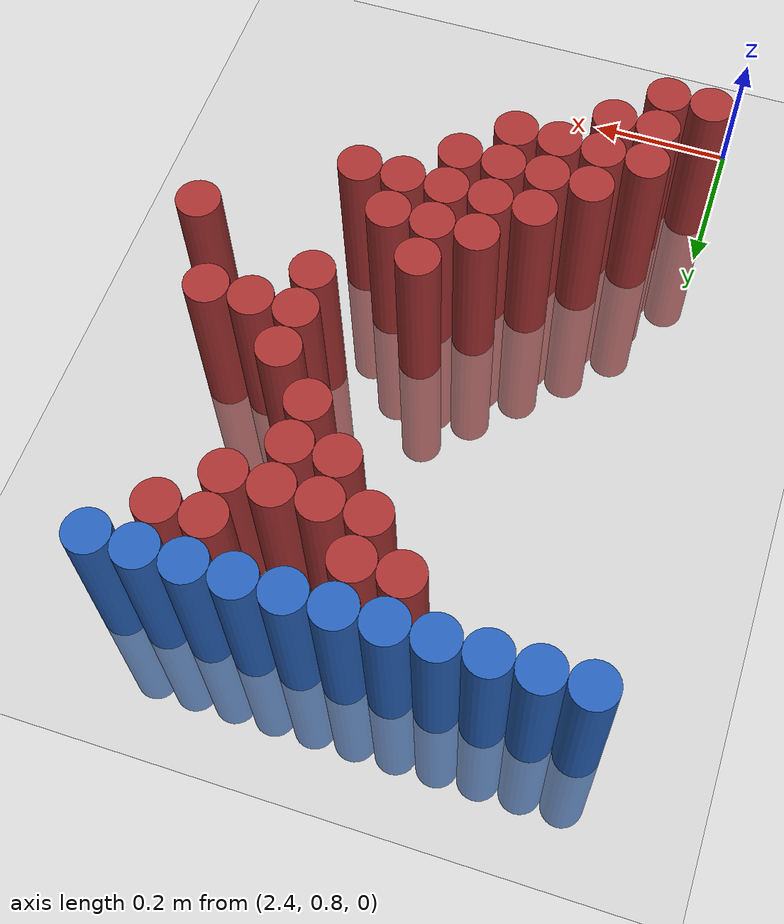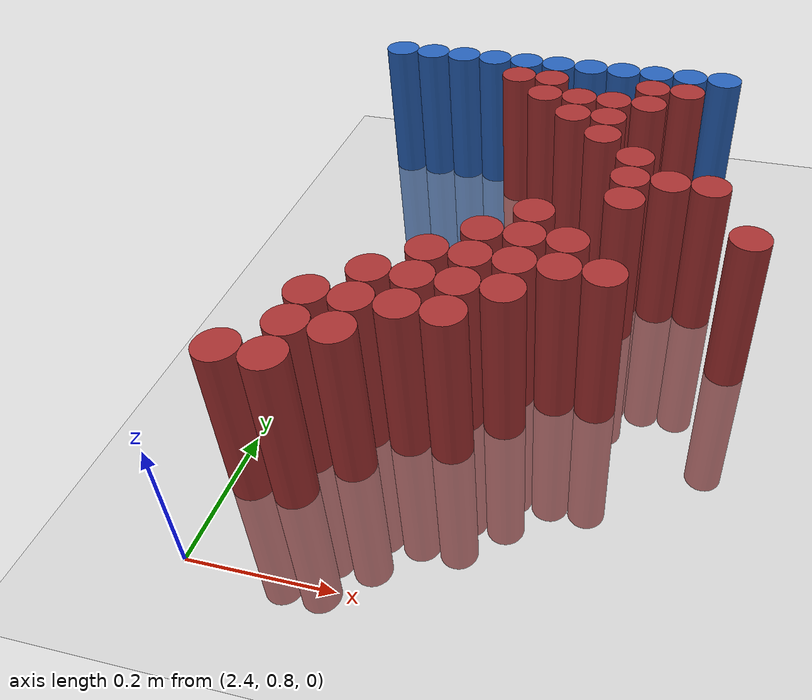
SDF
<sdf version="1.6">
 <world name="default">
  <model name="ground_plane">
   <static>1</static>
   <link name="link">
    <collision name="collision">
     <geometry><plane><normal>0 0 1</normal><size>100 100</size></plane></geometry>
     <surface><friction><ode><mu>100</mu><mu2>50</mu2></ode></friction></surface>
    </collision>
    <visual name="visual">
     <cast_shadows>0</cast_shadows>
     <geometry><plane><normal>0 0 1</normal><size>100 100</size></plane></geometry>
     <material>
      <script><uri>file://media/materials/scripts/gazebo.material</uri><name>Gazebo/Grey</name></script>
     </material>
    </visual>
   </link>
  </model>
  <model name="unit_cylinder_100">
   <static>1</static>
   <pose>2.370000 1.770000 0.000000 0.000000 0.000000 0.000000</pose>
   <link name="link">
    <inertial>
     <mass>1</mass>
     <inertia><ixx>0.145833</ixx><ixy>0</ixy><ixz>0</ixz><iyy>0.145833</iyy><iyz>0</iyz><izz>0.125</izz></inertia>
    </inertial>
    <collision name="collision">
     <geometry><cylinder><radius>0.030000</radius><length>0.5</length></cylinder></geometry>
    </collision>
    <visual name="visual">
     <geometry><cylinder><radius>0.030000</radius><length>0.5</length></cylinder></geometry>
     <material>
      <ambient>0.152000 0.379000 0.720000 1</ambient>
      <diffuse>0.152000 0.379000 0.720000 1</diffuse>
     </material>
     <material>
      <script><name>Gazebo/Grey</name><uri>file://media/materials/scripts/gazebo.material</uri></script>
     </material>
    </visual>
   </link>
  </model>
  <model name="unit_cylinder_101">
   <static>1</static>
   <pose>2.430000 1.770000 0.000000 0.000000 0.000000 0.000000</pose>
   <link name="link">
    <inertial>
     <mass>1</mass>
     <inertia><ixx>0.145833</ixx><ixy>0</ixy><ixz>0</ixz><iyy>0.145833</iyy><iyz>0</iyz><izz>0.125</izz></inertia>
    </inertial>
    <collision name="collision">
     <geometry><cylinder><radius>0.030000</radius><length>0.5</length></cylinder></geometry>
    </collision>
    <visual name="visual">
     <geometry><cylinder><radius>0.030000</radius><length>0.5</length></cylinder></geometry>
     <material>
      <ambient>0.152000 0.379000 0.720000 1</ambient>
      <diffuse>0.152000 0.379000 0.720000 1</diffuse>
     </material>
     <material>
      <script><name>Gazebo/Grey</name><uri>file://media/materials/scripts/gazebo.material</uri></script>
     </material>
    </visual>
   </link>
  </model>
  <model name="unit_cylinder_102">
   <static>1</static>
   <pose>2.490000 1.770000 0.000000 0.000000 0.000000 0.000000</pose>
   <link name="link">
    <inertial>
     <mass>1</mass>
     <inertia><ixx>0.145833</ixx><ixy>0</ixy><ixz>0</ixz><iyy>0.145833</iyy><iyz>0</iyz><izz>0.125</izz></inertia>
    </inertial>
    <collision name="collision">
     <geometry><cylinder><radius>0.030000</radius><length>0.5</length></cylinder></geometry>
    </collision>
    <visual name="visual">
     <geometry><cylinder><radius>0.030000</radius><length>0.5</length></cylinder></geometry>
     <material>
      <ambient>0.152000 0.379000 0.720000 1</ambient>
      <diffuse>0.152000 0.379000 0.720000 1</diffuse>
     </material>
     <material>
      <script><name>Gazebo/Grey</name><uri>file://media/materials/scripts/gazebo.material</uri></script>
     </material>
    </visual>
   </link>
  </model>
  <model name="unit_cylinder_103">
   <static>1</static>
   <pose>2.550000 1.770000 0.000000 0.000000 0.000000 0.000000</pose>
   <link name="link">
    <inertial>
     <mass>1</mass>
     <inertia><ixx>0.145833</ixx><ixy>0</ixy><ixz>0</ixz><iyy>0.145833</iyy><iyz>0</iyz><izz>0.125</izz></inertia>
    </inertial>
    <collision name="collision">
     <geometry><cylinder><radius>0.030000</radius><length>0.5</length></cylinder></geometry>
    </collision>
    <visual name="visual">
     <geometry><cylinder><radius>0.030000</radius><length>0.5</length></cylinder></geometry>
     <material>
      <ambient>0.152000 0.379000 0.720000 1</ambient>
      <diffuse>0.152000 0.379000 0.720000 1</diffuse>
     </material>
     <material>
      <script><name>Gazebo/Grey</name><uri>file://media/materials/scripts/gazebo.material</uri></script>
     </material>
    </visual>
   </link>
  </model>
  <model name="unit_cylinder_104">
   <static>1</static>
   <pose>2.610000 1.770000 0.000000 0.000000 0.000000 0.000000</pose>
   <link name="link">
    <inertial>
     <mass>1</mass>
     <inertia><ixx>0.145833</ixx><ixy>0</ixy><ixz>0</ixz><iyy>0.145833</iyy><iyz>0</iyz><izz>0.125</izz></inertia>
    </inertial>
    <collision name="collision">
     <geometry><cylinder><radius>0.030000</radius><length>0.5</length></cylinder></geometry>
    </collision>
    <visual name="visual">
     <geometry><cylinder><radius>0.030000</radius><length>0.5</length></cylinder></geometry>
     <material>
      <ambient>0.152000 0.379000 0.720000 1</ambient>
      <diffuse>0.152000 0.379000 0.720000 1</diffuse>
     </material>
     <material>
      <script><name>Gazebo/Grey</name><uri>file://media/materials/scripts/gazebo.material</uri></script>
     </material>
    </visual>
   </link>
  </model>
  <model name="unit_cylinder_105">
   <static>1</static>
   <pose>2.670000 1.770000 0.000000 0.000000 0.000000 0.000000</pose>
   <link name="link">
    <inertial>
     <mass>1</mass>
     <inertia><ixx>0.145833</ixx><ixy>0</ixy><ixz>0</ixz><iyy>0.145833</iyy><iyz>0</iyz><izz>0.125</izz></inertia>
    </inertial>
    <collision name="collision">
     <geometry><cylinder><radius>0.030000</radius><length>0.5</length></cylinder></geometry>
    </collision>
    <visual name="visual">
     <geometry><cylinder><radius>0.030000</radius><length>0.5</length></cylinder></geometry>
     <material>
      <ambient>0.152000 0.379000 0.720000 1</ambient>
      <diffuse>0.152000 0.379000 0.720000 1</diffuse>
     </material>
     <material>
      <script><name>Gazebo/Grey</name><uri>file://media/materials/scripts/gazebo.material</uri></script>
     </material>
    </visual>
   </link>
  </model>
  <model name="unit_cylinder_106">
   <static>1</static>
   <pose>2.730000 1.770000 0.000000 0.000000 0.000000 0.000000</pose>
   <link name="link">
    <inertial>
     <mass>1</mass>
     <inertia><ixx>0.145833</ixx><ixy>0</ixy><ixz>0</ixz><iyy>0.145833</iyy><iyz>0</iyz><izz>0.125</izz></inertia>
    </inertial>
    <collision name="collision">
     <geometry><cylinder><radius>0.030000</radius><length>0.5</length></cylinder></geometry>
    </collision>
    <visual name="visual">
     <geometry><cylinder><radius>0.030000</radius><length>0.5</length></cylinder></geometry>
     <material>
      <ambient>0.152000 0.379000 0.720000 1</ambient>
      <diffuse>0.152000 0.379000 0.720000 1</diffuse>
     </material>
     <material>
      <script><name>Gazebo/Grey</name><uri>file://media/materials/scripts/gazebo.material</uri></script>
     </material>
    </visual>
   </link>
  </model>
  <model name="unit_cylinder_107">
   <static>1</static>
   <pose>2.790000 1.770000 0.000000 0.000000 0.000000 0.000000</pose>
   <link name="link">
    <inertial>
     <mass>1</mass>
     <inertia><ixx>0.145833</ixx><ixy>0</ixy><ixz>0</ixz><iyy>0.145833</iyy><iyz>0</iyz><izz>0.125</izz></inertia>
    </inertial>
    <collision name="collision">
     <geometry><cylinder><radius>0.030000</radius><length>0.5</length></cylinder></geometry>
    </collision>
    <visual name="visual">
     <geometry><cylinder><radius>0.030000</radius><length>0.5</length></cylinder></geometry>
     <material>
      <ambient>0.152000 0.379000 0.720000 1</ambient>
      <diffuse>0.152000 0.379000 0.720000 1</diffuse>
     </material>
     <material>
      <script><name>Gazebo/Grey</name><uri>file://media/materials/scripts/gazebo.material</uri></script>
     </material>
    </visual>
   </link>
  </model>
  <model name="unit_cylinder_108">
   <static>1</static>
   <pose>2.850000 1.770000 0.000000 0.000000 0.000000 0.000000</pose>
   <link name="link">
    <inertial>
     <mass>1</mass>
     <inertia><ixx>0.145833</ixx><ixy>0</ixy><ixz>0</ixz><iyy>0.145833</iyy><iyz>0</iyz><izz>0.125</izz></inertia>
    </inertial>
    <collision name="collision">
     <geometry><cylinder><radius>0.030000</radius><length>0.5</length></cylinder></geometry>
    </collision>
    <visual name="visual">
     <geometry><cylinder><radius>0.030000</radius><length>0.5</length></cylinder></geometry>
     <material>
      <ambient>0.152000 0.379000 0.720000 1</ambient>
      <diffuse>0.152000 0.379000 0.720000 1</diffuse>
     </material>
     <material>
      <script><name>Gazebo/Grey</name><uri>file://media/materials/scripts/gazebo.material</uri></script>
     </material>
    </visual>
   </link>
  </model>
  <model name="unit_cylinder_109">
   <static>1</static>
   <pose>2.910000 1.770000 0.000000 0.000000 0.000000 0.000000</pose>
   <link name="link">
    <inertial>
     <mass>1</mass>
     <inertia><ixx>0.145833</ixx><ixy>0</ixy><ixz>0</ixz><iyy>0.145833</iyy><iyz>0</iyz><izz>0.125</izz></inertia>
    </inertial>
    <collision name="collision">
     <geometry><cylinder><radius>0.030000</radius><length>0.5</length></cylinder></geometry>
    </collision>
    <visual name="visual">
     <geometry><cylinder><radius>0.030000</radius><length>0.5</length></cylinder></geometry>
     <material>
      <ambient>0.152000 0.379000 0.720000 1</ambient>
      <diffuse>0.152000 0.379000 0.720000 1</diffuse>
     </material>
     <material>
      <script><name>Gazebo/Grey</name><uri>file://media/materials/scripts/gazebo.material</uri></script>
     </material>
    </visual>
   </link>
  </model>
  <model name="unit_cylinder_110">
   <static>1</static>
   <pose>2.970000 1.770000 0.000000 0.000000 0.000000 0.000000</pose>
   <link name="link">
    <inertial>
     <mass>1</mass>
     <inertia><ixx>0.145833</ixx><ixy>0</ixy><ixz>0</ixz><iyy>0.145833</iyy><iyz>0</iyz><izz>0.125</izz></inertia>
    </inertial>
    <collision name="collision">
     <geometry><cylinder><radius>0.030000</radius><length>0.5</length></cylinder></geometry>
    </collision>
    <visual name="visual">
     <geometry><cylinder><radius>0.030000</radius><length>0.5</length></cylinder></geometry>
     <material>
      <ambient>0.152000 0.379000 0.720000 1</ambient>
      <diffuse>0.152000 0.379000 0.720000 1</diffuse>
     </material>
     <material>
      <script><name>Gazebo/Grey</name><uri>file://media/materials/scripts/gazebo.material</uri></script>
     </material>
    </visual>
   </link>
  </model>
  <model name="unit_cylinder_128">
   <static>1</static>
   <pose>2.610000 1.710000 0.000000 0.000000 0.000000 0.000000</pose>
   <link name="link">
    <inertial>
     <mass>1</mass>
     <inertia><ixx>0.145833</ixx><ixy>0</ixy><ixz>0</ixz><iyy>0.145833</iyy><iyz>0</iyz><izz>0.125</izz></inertia>
    </inertial>
    <collision name="collision">
     <geometry><cylinder><radius>0.030000</radius><length>0.5</length></cylinder></geometry>
    </collision>
    <visual name="visual">
     <geometry><cylinder><radius>0.030000</radius><length>0.5</length></cylinder></geometry>
     <material>
      <ambient>0.648000 0.192000 0.192000 1</ambient>
      <diffuse>0.648000 0.192000 0.192000 1</diffuse>
     </material>
     <material>
      <script><name>Gazebo/Grey</name><uri>file://media/materials/scripts/gazebo.material</uri></script>
     </material>
    </visual>
   </link>
  </model>
  <model name="unit_cylinder_129">
   <static>1</static>
   <pose>2.670000 1.710000 0.000000 0.000000 0.000000 0.000000</pose>
   <link name="link">
    <inertial>
     <mass>1</mass>
     <inertia><ixx>0.145833</ixx><ixy>0</ixy><ixz>0</ixz><iyy>0.145833</iyy><iyz>0</iyz><izz>0.125</izz></inertia>
    </inertial>
    <collision name="collision">
     <geometry><cylinder><radius>0.030000</radius><length>0.5</length></cylinder></geometry>
    </collision>
    <visual name="visual">
     <geometry><cylinder><radius>0.030000</radius><length>0.5</length></cylinder></geometry>
     <material>
      <ambient>0.648000 0.192000 0.192000 1</ambient>
      <diffuse>0.648000 0.192000 0.192000 1</diffuse>
     </material>
     <material>
      <script><name>Gazebo/Grey</name><uri>file://media/materials/scripts/gazebo.material</uri></script>
     </material>
    </visual>
   </link>
  </model>
  <model name="unit_cylinder_130">
   <static>1</static>
   <pose>2.850000 1.710000 0.000000 0.000000 0.000000 0.000000</pose>
   <link name="link">
    <inertial>
     <mass>1</mass>
     <inertia><ixx>0.145833</ixx><ixy>0</ixy><ixz>0</ixz><iyy>0.145833</iyy><iyz>0</iyz><izz>0.125</izz></inertia>
    </inertial>
    <collision name="collision">
     <geometry><cylinder><radius>0.030000</radius><length>0.5</length></cylinder></geometry>
    </collision>
    <visual name="visual">
     <geometry><cylinder><radius>0.030000</radius><length>0.5</length></cylinder></geometry>
     <material>
      <ambient>0.648000 0.192000 0.192000 1</ambient>
      <diffuse>0.648000 0.192000 0.192000 1</diffuse>
     </material>
     <material>
      <script><name>Gazebo/Grey</name><uri>file://media/materials/scripts/gazebo.material</uri></script>
     </material>
    </visual>
   </link>
  </model>
  <model name="unit_cylinder_131">
   <static>1</static>
   <pose>2.910000 1.710000 0.000000 0.000000 0.000000 0.000000</pose>
   <link name="link">
    <inertial>
     <mass>1</mass>
     <inertia><ixx>0.145833</ixx><ixy>0</ixy><ixz>0</ixz><iyy>0.145833</iyy><iyz>0</iyz><izz>0.125</izz></inertia>
    </inertial>
    <collision name="collision">
     <geometry><cylinder><radius>0.030000</radius><length>0.5</length></cylinder></geometry>
    </collision>
    <visual name="visual">
     <geometry><cylinder><radius>0.030000</radius><length>0.5</length></cylinder></geometry>
     <material>
      <ambient>0.648000 0.192000 0.192000 1</ambient>
      <diffuse>0.648000 0.192000 0.192000 1</diffuse>
     </material>
     <material>
      <script><name>Gazebo/Grey</name><uri>file://media/materials/scripts/gazebo.material</uri></script>
     </material>
    </visual>
   </link>
  </model>
  <model name="unit_cylinder_142">
   <static>1</static>
   <pose>2.670000 1.650000 0.000000 0.000000 0.000000 0.000000</pose>
   <link name="link">
    <inertial>
     <mass>1</mass>
     <inertia><ixx>0.145833</ixx><ixy>0</ixy><ixz>0</ixz><iyy>0.145833</iyy><iyz>0</iyz><izz>0.125</izz></inertia>
    </inertial>
    <collision name="collision">
     <geometry><cylinder><radius>0.030000</radius><length>0.5</length></cylinder></geometry>
    </collision>
    <visual name="visual">
     <geometry><cylinder><radius>0.030000</radius><length>0.5</length></cylinder></geometry>
     <material>
      <ambient>0.648000 0.192000 0.192000 1</ambient>
      <diffuse>0.648000 0.192000 0.192000 1</diffuse>
     </material>
     <material>
      <script><name>Gazebo/Grey</name><uri>file://media/materials/scripts/gazebo.material</uri></script>
     </material>
    </visual>
   </link>
  </model>
  <model name="unit_cylinder_143">
   <static>1</static>
   <pose>2.730000 1.650000 0.000000 0.000000 0.000000 0.000000</pose>
   <link name="link">
    <inertial>
     <mass>1</mass>
     <inertia><ixx>0.145833</ixx><ixy>0</ixy><ixz>0</ixz><iyy>0.145833</iyy><iyz>0</iyz><izz>0.125</izz></inertia>
    </inertial>
    <collision name="collision">
     <geometry><cylinder><radius>0.030000</radius><length>0.5</length></cylinder></geometry>
    </collision>
    <visual name="visual">
     <geometry><cylinder><radius>0.030000</radius><length>0.5</length></cylinder></geometry>
     <material>
      <ambient>0.648000 0.192000 0.192000 1</ambient>
      <diffuse>0.648000 0.192000 0.192000 1</diffuse>
     </material>
     <material>
      <script><name>Gazebo/Grey</name><uri>file://media/materials/scripts/gazebo.material</uri></script>
     </material>
    </visual>
   </link>
  </model>
  <model name="unit_cylinder_144">
   <static>1</static>
   <pose>2.790000 1.650000 0.000000 0.000000 0.000000 0.000000</pose>
   <link name="link">
    <inertial>
     <mass>1</mass>
     <inertia><ixx>0.145833</ixx><ixy>0</ixy><ixz>0</ixz><iyy>0.145833</iyy><iyz>0</iyz><izz>0.125</izz></inertia>
    </inertial>
    <collision name="collision">
     <geometry><cylinder><radius>0.030000</radius><length>0.5</length></cylinder></geometry>
    </collision>
    <visual name="visual">
     <geometry><cylinder><radius>0.030000</radius><length>0.5</length></cylinder></geometry>
     <material>
      <ambient>0.648000 0.192000 0.192000 1</ambient>
      <diffuse>0.648000 0.192000 0.192000 1</diffuse>
     </material>
     <material>
      <script><name>Gazebo/Grey</name><uri>file://media/materials/scripts/gazebo.material</uri></script>
     </material>
    </visual>
   </link>
  </model>
  <model name="unit_cylinder_145">
   <static>1</static>
   <pose>2.850000 1.650000 0.000000 0.000000 0.000000 0.000000</pose>
   <link name="link">
    <inertial>
     <mass>1</mass>
     <inertia><ixx>0.145833</ixx><ixy>0</ixy><ixz>0</ixz><iyy>0.145833</iyy><iyz>0</iyz><izz>0.125</izz></inertia>
    </inertial>
    <collision name="collision">
     <geometry><cylinder><radius>0.030000</radius><length>0.5</length></cylinder></geometry>
    </collision>
    <visual name="visual">
     <geometry><cylinder><radius>0.030000</radius><length>0.5</length></cylinder></geometry>
     <material>
      <ambient>0.648000 0.192000 0.192000 1</ambient>
      <diffuse>0.648000 0.192000 0.192000 1</diffuse>
     </material>
     <material>
      <script><name>Gazebo/Grey</name><uri>file://media/materials/scripts/gazebo.material</uri></script>
     </material>
    </visual>
   </link>
  </model>
  <model name="unit_cylinder_153">
   <static>1</static>
   <pose>2.730000 1.590000 0.000000 0.000000 0.000000 0.000000</pose>
   <link name="link">
    <inertial>
     <mass>1</mass>
     <inertia><ixx>0.145833</ixx><ixy>0</ixy><ixz>0</ixz><iyy>0.145833</iyy><iyz>0</iyz><izz>0.125</izz></inertia>
    </inertial>
    <collision name="collision">
     <geometry><cylinder><radius>0.030000</radius><length>0.5</length></cylinder></geometry>
    </collision>
    <visual name="visual">
     <geometry><cylinder><radius>0.030000</radius><length>0.5</length></cylinder></geometry>
     <material>
      <ambient>0.648000 0.192000 0.192000 1</ambient>
      <diffuse>0.648000 0.192000 0.192000 1</diffuse>
     </material>
     <material>
      <script><name>Gazebo/Grey</name><uri>file://media/materials/scripts/gazebo.material</uri></script>
     </material>
    </visual>
   </link>
  </model>
  <model name="unit_cylinder_154">
   <static>1</static>
   <pose>2.790000 1.590000 0.000000 0.000000 0.000000 0.000000</pose>
   <link name="link">
    <inertial>
     <mass>1</mass>
     <inertia><ixx>0.145833</ixx><ixy>0</ixy><ixz>0</ixz><iyy>0.145833</iyy><iyz>0</iyz><izz>0.125</izz></inertia>
    </inertial>
    <collision name="collision">
     <geometry><cylinder><radius>0.030000</radius><length>0.5</length></cylinder></geometry>
    </collision>
    <visual name="visual">
     <geometry><cylinder><radius>0.030000</radius><length>0.5</length></cylinder></geometry>
     <material>
      <ambient>0.648000 0.192000 0.192000 1</ambient>
      <diffuse>0.648000 0.192000 0.192000 1</diffuse>
     </material>
     <material>
      <script><name>Gazebo/Grey</name><uri>file://media/materials/scripts/gazebo.material</uri></script>
     </material>
    </visual>
   </link>
  </model>
  <model name="unit_cylinder_160">
   <static>1</static>
   <pose>2.790000 1.530000 0.000000 0.000000 0.000000 0.000000</pose>
   <link name="link">
    <inertial>
     <mass>1</mass>
     <inertia><ixx>0.145833</ixx><ixy>0</ixy><ixz>0</ixz><iyy>0.145833</iyy><iyz>0</iyz><izz>0.125</izz></inertia>
    </inertial>
    <collision name="collision">
     <geometry><cylinder><radius>0.030000</radius><length>0.5</length></cylinder></geometry>
    </collision>
    <visual name="visual">
     <geometry><cylinder><radius>0.030000</radius><length>0.5</length></cylinder></geometry>
     <material>
      <ambient>0.648000 0.192000 0.192000 1</ambient>
      <diffuse>0.648000 0.192000 0.192000 1</diffuse>
     </material>
     <material>
      <script><name>Gazebo/Grey</name><uri>file://media/materials/scripts/gazebo.material</uri></script>
     </material>
    </visual>
   </link>
  </model>
  <model name="unit_cylinder_162">
   <static>1</static>
   <pose>2.850000 1.470000 0.000000 0.000000 0.000000 0.000000</pose>
   <link name="link">
    <inertial>
     <mass>1</mass>
     <inertia><ixx>0.145833</ixx><ixy>0</ixy><ixz>0</ixz><iyy>0.145833</iyy><iyz>0</iyz><izz>0.125</izz></inertia>
    </inertial>
    <collision name="collision">
     <geometry><cylinder><radius>0.030000</radius><length>0.5</length></cylinder></geometry>
    </collision>
    <visual name="visual">
     <geometry><cylinder><radius>0.030000</radius><length>0.5</length></cylinder></geometry>
     <material>
      <ambient>0.648000 0.192000 0.192000 1</ambient>
      <diffuse>0.648000 0.192000 0.192000 1</diffuse>
     </material>
     <material>
      <script><name>Gazebo/Grey</name><uri>file://media/materials/scripts/gazebo.material</uri></script>
     </material>
    </visual>
   </link>
  </model>
  <model name="unit_cylinder_165">
   <static>1</static>
   <pose>2.850000 1.410000 0.000000 0.000000 0.000000 0.000000</pose>
   <link name="link">
    <inertial>
     <mass>1</mass>
     <inertia><ixx>0.145833</ixx><ixy>0</ixy><ixz>0</ixz><iyy>0.145833</iyy><iyz>0</iyz><izz>0.125</izz></inertia>
    </inertial>
    <collision name="collision">
     <geometry><cylinder><radius>0.030000</radius><length>0.5</length></cylinder></geometry>
    </collision>
    <visual name="visual">
     <geometry><cylinder><radius>0.030000</radius><length>0.5</length></cylinder></geometry>
     <material>
      <ambient>0.648000 0.192000 0.192000 1</ambient>
      <diffuse>0.648000 0.192000 0.192000 1</diffuse>
     </material>
     <material>
      <script><name>Gazebo/Grey</name><uri>file://media/materials/scripts/gazebo.material</uri></script>
     </material>
    </visual>
   </link>
  </model>
  <model name="unit_cylinder_166">
   <static>1</static>
   <pose>2.910000 1.410000 0.000000 0.000000 0.000000 0.000000</pose>
   <link name="link">
    <inertial>
     <mass>1</mass>
     <inertia><ixx>0.145833</ixx><ixy>0</ixy><ixz>0</ixz><iyy>0.145833</iyy><iyz>0</iyz><izz>0.125</izz></inertia>
    </inertial>
    <collision name="collision">
     <geometry><cylinder><radius>0.030000</radius><length>0.5</length></cylinder></geometry>
    </collision>
    <visual name="visual">
     <geometry><cylinder><radius>0.030000</radius><length>0.5</length></cylinder></geometry>
     <material>
      <ambient>0.648000 0.192000 0.192000 1</ambient>
      <diffuse>0.648000 0.192000 0.192000 1</diffuse>
     </material>
     <material>
      <script><name>Gazebo/Grey</name><uri>file://media/materials/scripts/gazebo.material</uri></script>
     </material>
    </visual>
   </link>
  </model>
  <model name="unit_cylinder_167">
   <static>1</static>
   <pose>2.970000 1.410000 0.000000 0.000000 0.000000 0.000000</pose>
   <link name="link">
    <inertial>
     <mass>1</mass>
     <inertia><ixx>0.145833</ixx><ixy>0</ixy><ixz>0</ixz><iyy>0.145833</iyy><iyz>0</iyz><izz>0.125</izz></inertia>
    </inertial>
    <collision name="collision">
     <geometry><cylinder><radius>0.030000</radius><length>0.5</length></cylinder></geometry>
    </collision>
    <visual name="visual">
     <geometry><cylinder><radius>0.030000</radius><length>0.5</length></cylinder></geometry>
     <material>
      <ambient>0.648000 0.192000 0.192000 1</ambient>
      <diffuse>0.648000 0.192000 0.192000 1</diffuse>
     </material>
     <material>
      <script><name>Gazebo/Grey</name><uri>file://media/materials/scripts/gazebo.material</uri></script>
     </material>
    </visual>
   </link>
  </model>
  <model name="unit_cylinder_171">
   <static>1</static>
   <pose>2.850000 1.350000 0.000000 0.000000 0.000000 0.000000</pose>
   <link name="link">
    <inertial>
     <mass>1</mass>
     <inertia><ixx>0.145833</ixx><ixy>0</ixy><ixz>0</ixz><iyy>0.145833</iyy><iyz>0</iyz><izz>0.125</izz></inertia>
    </inertial>
    <collision name="collision">
     <geometry><cylinder><radius>0.030000</radius><length>0.5</length></cylinder></geometry>
    </collision>
    <visual name="visual">
     <geometry><cylinder><radius>0.030000</radius><length>0.5</length></cylinder></geometry>
     <material>
      <ambient>0.648000 0.192000 0.192000 1</ambient>
      <diffuse>0.648000 0.192000 0.192000 1</diffuse>
     </material>
     <material>
      <script><name>Gazebo/Grey</name><uri>file://media/materials/scripts/gazebo.material</uri></script>
     </material>
    </visual>
   </link>
  </model>
  <model name="unit_cylinder_178">
   <static>1</static>
   <pose>2.730000 1.290000 0.000000 0.000000 0.000000 0.000000</pose>
   <link name="link">
    <inertial>
     <mass>1</mass>
     <inertia><ixx>0.145833</ixx><ixy>0</ixy><ixz>0</ixz><iyy>0.145833</iyy><iyz>0</iyz><izz>0.125</izz></inertia>
    </inertial>
    <collision name="collision">
     <geometry><cylinder><radius>0.030000</radius><length>0.5</length></cylinder></geometry>
    </collision>
    <visual name="visual">
     <geometry><cylinder><radius>0.030000</radius><length>0.5</length></cylinder></geometry>
     <material>
      <ambient>0.648000 0.192000 0.192000 1</ambient>
      <diffuse>0.648000 0.192000 0.192000 1</diffuse>
     </material>
     <material>
      <script><name>Gazebo/Grey</name><uri>file://media/materials/scripts/gazebo.material</uri></script>
     </material>
    </visual>
   </link>
  </model>
  <model name="unit_cylinder_179">
   <static>1</static>
   <pose>3.030000 1.290000 0.000000 0.000000 0.000000 0.000000</pose>
   <link name="link">
    <inertial>
     <mass>1</mass>
     <inertia><ixx>0.145833</ixx><ixy>0</ixy><ixz>0</ixz><iyy>0.145833</iyy><iyz>0</iyz><izz>0.125</izz></inertia>
    </inertial>
    <collision name="collision">
     <geometry><cylinder><radius>0.030000</radius><length>0.5</length></cylinder></geometry>
    </collision>
    <visual name="visual">
     <geometry><cylinder><radius>0.030000</radius><length>0.5</length></cylinder></geometry>
     <material>
      <ambient>0.648000 0.192000 0.192000 1</ambient>
      <diffuse>0.648000 0.192000 0.192000 1</diffuse>
     </material>
     <material>
      <script><name>Gazebo/Grey</name><uri>file://media/materials/scripts/gazebo.material</uri></script>
     </material>
    </visual>
   </link>
  </model>
  <model name="unit_cylinder_185">
   <static>1</static>
   <pose>2.670000 1.230000 0.000000 0.000000 0.000000 0.000000</pose>
   <link name="link">
    <inertial>
     <mass>1</mass>
     <inertia><ixx>0.145833</ixx><ixy>0</ixy><ixz>0</ixz><iyy>0.145833</iyy><iyz>0</iyz><izz>0.125</izz></inertia>
    </inertial>
    <collision name="collision">
     <geometry><cylinder><radius>0.030000</radius><length>0.5</length></cylinder></geometry>
    </collision>
    <visual name="visual">
     <geometry><cylinder><radius>0.030000</radius><length>0.5</length></cylinder></geometry>
     <material>
      <ambient>0.648000 0.192000 0.192000 1</ambient>
      <diffuse>0.648000 0.192000 0.192000 1</diffuse>
     </material>
     <material>
      <script><name>Gazebo/Grey</name><uri>file://media/materials/scripts/gazebo.material</uri></script>
     </material>
    </visual>
   </link>
  </model>
  <model name="unit_cylinder_186">
   <static>1</static>
   <pose>2.730000 1.230000 0.000000 0.000000 0.000000 0.000000</pose>
   <link name="link">
    <inertial>
     <mass>1</mass>
     <inertia><ixx>0.145833</ixx><ixy>0</ixy><ixz>0</ixz><iyy>0.145833</iyy><iyz>0</iyz><izz>0.125</izz></inertia>
    </inertial>
    <collision name="collision">
     <geometry><cylinder><radius>0.030000</radius><length>0.5</length></cylinder></geometry>
    </collision>
    <visual name="visual">
     <geometry><cylinder><radius>0.030000</radius><length>0.5</length></cylinder></geometry>
     <material>
      <ambient>0.648000 0.192000 0.192000 1</ambient>
      <diffuse>0.648000 0.192000 0.192000 1</diffuse>
     </material>
     <material>
      <script><name>Gazebo/Grey</name><uri>file://media/materials/scripts/gazebo.material</uri></script>
     </material>
    </visual>
   </link>
  </model>
  <model name="unit_cylinder_187">
   <static>1</static>
   <pose>2.790000 1.230000 0.000000 0.000000 0.000000 0.000000</pose>
   <link name="link">
    <inertial>
     <mass>1</mass>
     <inertia><ixx>0.145833</ixx><ixy>0</ixy><ixz>0</ixz><iyy>0.145833</iyy><iyz>0</iyz><izz>0.125</izz></inertia>
    </inertial>
    <collision name="collision">
     <geometry><cylinder><radius>0.030000</radius><length>0.5</length></cylinder></geometry>
    </collision>
    <visual name="visual">
     <geometry><cylinder><radius>0.030000</radius><length>0.5</length></cylinder></geometry>
     <material>
      <ambient>0.648000 0.192000 0.192000 1</ambient>
      <diffuse>0.648000 0.192000 0.192000 1</diffuse>
     </material>
     <material>
      <script><name>Gazebo/Grey</name><uri>file://media/materials/scripts/gazebo.material</uri></script>
     </material>
    </visual>
   </link>
  </model>
  <model name="unit_cylinder_194">
   <static>1</static>
   <pose>2.610000 1.170000 0.000000 0.000000 0.000000 0.000000</pose>
   <link name="link">
    <inertial>
     <mass>1</mass>
     <inertia><ixx>0.145833</ixx><ixy>0</ixy><ixz>0</ixz><iyy>0.145833</iyy><iyz>0</iyz><izz>0.125</izz></inertia>
    </inertial>
    <collision name="collision">
     <geometry><cylinder><radius>0.030000</radius><length>0.5</length></cylinder></geometry>
    </collision>
    <visual name="visual">
     <geometry><cylinder><radius>0.030000</radius><length>0.5</length></cylinder></geometry>
     <material>
      <ambient>0.648000 0.192000 0.192000 1</ambient>
      <diffuse>0.648000 0.192000 0.192000 1</diffuse>
     </material>
     <material>
      <script><name>Gazebo/Grey</name><uri>file://media/materials/scripts/gazebo.material</uri></script>
     </material>
    </visual>
   </link>
  </model>
  <model name="unit_cylinder_195">
   <static>1</static>
   <pose>2.670000 1.170000 0.000000 0.000000 0.000000 0.000000</pose>
   <link name="link">
    <inertial>
     <mass>1</mass>
     <inertia><ixx>0.145833</ixx><ixy>0</ixy><ixz>0</ixz><iyy>0.145833</iyy><iyz>0</iyz><izz>0.125</izz></inertia>
    </inertial>
    <collision name="collision">
     <geometry><cylinder><radius>0.030000</radius><length>0.5</length></cylinder></geometry>
    </collision>
    <visual name="visual">
     <geometry><cylinder><radius>0.030000</radius><length>0.5</length></cylinder></geometry>
     <material>
      <ambient>0.648000 0.192000 0.192000 1</ambient>
      <diffuse>0.648000 0.192000 0.192000 1</diffuse>
     </material>
     <material>
      <script><name>Gazebo/Grey</name><uri>file://media/materials/scripts/gazebo.material</uri></script>
     </material>
    </visual>
   </link>
  </model>
  <model name="unit_cylinder_196">
   <static>1</static>
   <pose>2.730000 1.170000 0.000000 0.000000 0.000000 0.000000</pose>
   <link name="link">
    <inertial>
     <mass>1</mass>
     <inertia><ixx>0.145833</ixx><ixy>0</ixy><ixz>0</ixz><iyy>0.145833</iyy><iyz>0</iyz><izz>0.125</izz></inertia>
    </inertial>
    <collision name="collision">
     <geometry><cylinder><radius>0.030000</radius><length>0.5</length></cylinder></geometry>
    </collision>
    <visual name="visual">
     <geometry><cylinder><radius>0.030000</radius><length>0.5</length></cylinder></geometry>
     <material>
      <ambient>0.648000 0.192000 0.192000 1</ambient>
      <diffuse>0.648000 0.192000 0.192000 1</diffuse>
     </material>
     <material>
      <script><name>Gazebo/Grey</name><uri>file://media/materials/scripts/gazebo.material</uri></script>
     </material>
    </visual>
   </link>
  </model>
  <model name="unit_cylinder_197">
   <static>1</static>
   <pose>2.790000 1.170000 0.000000 0.000000 0.000000 0.000000</pose>
   <link name="link">
    <inertial>
     <mass>1</mass>
     <inertia><ixx>0.145833</ixx><ixy>0</ixy><ixz>0</ixz><iyy>0.145833</iyy><iyz>0</iyz><izz>0.125</izz></inertia>
    </inertial>
    <collision name="collision">
     <geometry><cylinder><radius>0.030000</radius><length>0.5</length></cylinder></geometry>
    </collision>
    <visual name="visual">
     <geometry><cylinder><radius>0.030000</radius><length>0.5</length></cylinder></geometry>
     <material>
      <ambient>0.648000 0.192000 0.192000 1</ambient>
      <diffuse>0.648000 0.192000 0.192000 1</diffuse>
     </material>
     <material>
      <script><name>Gazebo/Grey</name><uri>file://media/materials/scripts/gazebo.material</uri></script>
     </material>
    </visual>
   </link>
  </model>
  <model name="unit_cylinder_198">
   <static>1</static>
   <pose>2.850000 1.170000 0.000000 0.000000 0.000000 0.000000</pose>
   <link name="link">
    <inertial>
     <mass>1</mass>
     <inertia><ixx>0.145833</ixx><ixy>0</ixy><ixz>0</ixz><iyy>0.145833</iyy><iyz>0</iyz><izz>0.125</izz></inertia>
    </inertial>
    <collision name="collision">
     <geometry><cylinder><radius>0.030000</radius><length>0.5</length></cylinder></geometry>
    </collision>
    <visual name="visual">
     <geometry><cylinder><radius>0.030000</radius><length>0.5</length></cylinder></geometry>
     <material>
      <ambient>0.648000 0.192000 0.192000 1</ambient>
      <diffuse>0.648000 0.192000 0.192000 1</diffuse>
     </material>
     <material>
      <script><name>Gazebo/Grey</name><uri>file://media/materials/scripts/gazebo.material</uri></script>
     </material>
    </visual>
   </link>
  </model>
  <model name="unit_cylinder_203">
   <static>1</static>
   <pose>2.550000 1.110000 0.000000 0.000000 0.000000 0.000000</pose>
   <link name="link">
    <inertial>
     <mass>1</mass>
     <inertia><ixx>0.145833</ixx><ixy>0</ixy><ixz>0</ixz><iyy>0.145833</iyy><iyz>0</iyz><izz>0.125</izz></inertia>
    </inertial>
    <collision name="collision">
     <geometry><cylinder><radius>0.030000</radius><length>0.5</length></cylinder></geometry>
    </collision>
    <visual name="visual">
     <geometry><cylinder><radius>0.030000</radius><length>0.5</length></cylinder></geometry>
     <material>
      <ambient>0.648000 0.192000 0.192000 1</ambient>
      <diffuse>0.648000 0.192000 0.192000 1</diffuse>
     </material>
     <material>
      <script><name>Gazebo/Grey</name><uri>file://media/materials/scripts/gazebo.material</uri></script>
     </material>
    </visual>
   </link>
  </model>
  <model name="unit_cylinder_204">
   <static>1</static>
   <pose>2.610000 1.110000 0.000000 0.000000 0.000000 0.000000</pose>
   <link name="link">
    <inertial>
     <mass>1</mass>
     <inertia><ixx>0.145833</ixx><ixy>0</ixy><ixz>0</ixz><iyy>0.145833</iyy><iyz>0</iyz><izz>0.125</izz></inertia>
    </inertial>
    <collision name="collision">
     <geometry><cylinder><radius>0.030000</radius><length>0.5</length></cylinder></geometry>
    </collision>
    <visual name="visual">
     <geometry><cylinder><radius>0.030000</radius><length>0.5</length></cylinder></geometry>
     <material>
      <ambient>0.648000 0.192000 0.192000 1</ambient>
      <diffuse>0.648000 0.192000 0.192000 1</diffuse>
     </material>
     <material>
      <script><name>Gazebo/Grey</name><uri>file://media/materials/scripts/gazebo.material</uri></script>
     </material>
    </visual>
   </link>
  </model>
  <model name="unit_cylinder_205">
   <static>1</static>
   <pose>2.670000 1.110000 0.000000 0.000000 0.000000 0.000000</pose>
   <link name="link">
    <inertial>
     <mass>1</mass>
     <inertia><ixx>0.145833</ixx><ixy>0</ixy><ixz>0</ixz><iyy>0.145833</iyy><iyz>0</iyz><izz>0.125</izz></inertia>
    </inertial>
    <collision name="collision">
     <geometry><cylinder><radius>0.030000</radius><length>0.5</length></cylinder></geometry>
    </collision>
    <visual name="visual">
     <geometry><cylinder><radius>0.030000</radius><length>0.5</length></cylinder></geometry>
     <material>
      <ambient>0.648000 0.192000 0.192000 1</ambient>
      <diffuse>0.648000 0.192000 0.192000 1</diffuse>
     </material>
     <material>
      <script><name>Gazebo/Grey</name><uri>file://media/materials/scripts/gazebo.material</uri></script>
     </material>
    </visual>
   </link>
  </model>
  <model name="unit_cylinder_206">
   <static>1</static>
   <pose>2.730000 1.110000 0.000000 0.000000 0.000000 0.000000</pose>
   <link name="link">
    <inertial>
     <mass>1</mass>
     <inertia><ixx>0.145833</ixx><ixy>0</ixy><ixz>0</ixz><iyy>0.145833</iyy><iyz>0</iyz><izz>0.125</izz></inertia>
    </inertial>
    <collision name="collision">
     <geometry><cylinder><radius>0.030000</radius><length>0.5</length></cylinder></geometry>
    </collision>
    <visual name="visual">
     <geometry><cylinder><radius>0.030000</radius><length>0.5</length></cylinder></geometry>
     <material>
      <ambient>0.648000 0.192000 0.192000 1</ambient>
      <diffuse>0.648000 0.192000 0.192000 1</diffuse>
     </material>
     <material>
      <script><name>Gazebo/Grey</name><uri>file://media/materials/scripts/gazebo.material</uri></script>
     </material>
    </visual>
   </link>
  </model>
  <model name="unit_cylinder_210">
   <static>1</static>
   <pose>2.490000 1.050000 0.000000 0.000000 0.000000 0.000000</pose>
   <link name="link">
    <inertial>
     <mass>1</mass>
     <inertia><ixx>0.145833</ixx><ixy>0</ixy><ixz>0</ixz><iyy>0.145833</iyy><iyz>0</iyz><izz>0.125</izz></inertia>
    </inertial>
    <collision name="collision">
     <geometry><cylinder><radius>0.030000</radius><length>0.5</length></cylinder></geometry>
    </collision>
    <visual name="visual">
     <geometry><cylinder><radius>0.030000</radius><length>0.5</length></cylinder></geometry>
     <material>
      <ambient>0.648000 0.192000 0.192000 1</ambient>
      <diffuse>0.648000 0.192000 0.192000 1</diffuse>
     </material>
     <material>
      <script><name>Gazebo/Grey</name><uri>file://media/materials/scripts/gazebo.material</uri></script>
     </material>
    </visual>
   </link>
  </model>
  <model name="unit_cylinder_211">
   <static>1</static>
   <pose>2.550000 1.050000 0.000000 0.000000 0.000000 0.000000</pose>
   <link name="link">
    <inertial>
     <mass>1</mass>
     <inertia><ixx>0.145833</ixx><ixy>0</ixy><ixz>0</ixz><iyy>0.145833</iyy><iyz>0</iyz><izz>0.125</izz></inertia>
    </inertial>
    <collision name="collision">
     <geometry><cylinder><radius>0.030000</radius><length>0.5</length></cylinder></geometry>
    </collision>
    <visual name="visual">
     <geometry><cylinder><radius>0.030000</radius><length>0.5</length></cylinder></geometry>
     <material>
      <ambient>0.648000 0.192000 0.192000 1</ambient>
      <diffuse>0.648000 0.192000 0.192000 1</diffuse>
     </material>
     <material>
      <script><name>Gazebo/Grey</name><uri>file://media/materials/scripts/gazebo.material</uri></script>
     </material>
    </visual>
   </link>
  </model>
  <model name="unit_cylinder_212">
   <static>1</static>
   <pose>2.610000 1.050000 0.000000 0.000000 0.000000 0.000000</pose>
   <link name="link">
    <inertial>
     <mass>1</mass>
     <inertia><ixx>0.145833</ixx><ixy>0</ixy><ixz>0</ixz><iyy>0.145833</iyy><iyz>0</iyz><izz>0.125</izz></inertia>
    </inertial>
    <collision name="collision">
     <geometry><cylinder><radius>0.030000</radius><length>0.5</length></cylinder></geometry>
    </collision>
    <visual name="visual">
     <geometry><cylinder><radius>0.030000</radius><length>0.5</length></cylinder></geometry>
     <material>
      <ambient>0.648000 0.192000 0.192000 1</ambient>
      <diffuse>0.648000 0.192000 0.192000 1</diffuse>
     </material>
     <material>
      <script><name>Gazebo/Grey</name><uri>file://media/materials/scripts/gazebo.material</uri></script>
     </material>
    </visual>
   </link>
  </model>
  <model name="unit_cylinder_213">
   <static>1</static>
   <pose>2.670000 1.050000 0.000000 0.000000 0.000000 0.000000</pose>
   <link name="link">
    <inertial>
     <mass>1</mass>
     <inertia><ixx>0.145833</ixx><ixy>0</ixy><ixz>0</ixz><iyy>0.145833</iyy><iyz>0</iyz><izz>0.125</izz></inertia>
    </inertial>
    <collision name="collision">
     <geometry><cylinder><radius>0.030000</radius><length>0.5</length></cylinder></geometry>
    </collision>
    <visual name="visual">
     <geometry><cylinder><radius>0.030000</radius><length>0.5</length></cylinder></geometry>
     <material>
      <ambient>0.648000 0.192000 0.192000 1</ambient>
      <diffuse>0.648000 0.192000 0.192000 1</diffuse>
     </material>
     <material>
      <script><name>Gazebo/Grey</name><uri>file://media/materials/scripts/gazebo.material</uri></script>
     </material>
    </visual>
   </link>
  </model>
  <model name="unit_cylinder_218">
   <static>1</static>
   <pose>2.490000 0.990000 0.000000 0.000000 0.000000 0.000000</pose>
   <link name="link">
    <inertial>
     <mass>1</mass>
     <inertia><ixx>0.145833</ixx><ixy>0</ixy><ixz>0</ixz><iyy>0.145833</iyy><iyz>0</iyz><izz>0.125</izz></inertia>
    </inertial>
    <collision name="collision">
     <geometry><cylinder><radius>0.030000</radius><length>0.5</length></cylinder></geometry>
    </collision>
    <visual name="visual">
     <geometry><cylinder><radius>0.030000</radius><length>0.5</length></cylinder></geometry>
     <material>
      <ambient>0.648000 0.192000 0.192000 1</ambient>
      <diffuse>0.648000 0.192000 0.192000 1</diffuse>
     </material>
     <material>
      <script><name>Gazebo/Grey</name><uri>file://media/materials/scripts/gazebo.material</uri></script>
     </material>
    </visual>
   </link>
  </model>
  <model name="unit_cylinder_219">
   <static>1</static>
   <pose>2.550000 0.990000 0.000000 0.000000 0.000000 0.000000</pose>
   <link name="link">
    <inertial>
     <mass>1</mass>
     <inertia><ixx>0.145833</ixx><ixy>0</ixy><ixz>0</ixz><iyy>0.145833</iyy><iyz>0</iyz><izz>0.125</izz></inertia>
    </inertial>
    <collision name="collision">
     <geometry><cylinder><radius>0.030000</radius><length>0.5</length></cylinder></geometry>
    </collision>
    <visual name="visual">
     <geometry><cylinder><radius>0.030000</radius><length>0.5</length></cylinder></geometry>
     <material>
      <ambient>0.648000 0.192000 0.192000 1</ambient>
      <diffuse>0.648000 0.192000 0.192000 1</diffuse>
     </material>
     <material>
      <script><name>Gazebo/Grey</name><uri>file://media/materials/scripts/gazebo.material</uri></script>
     </material>
    </visual>
   </link>
  </model>
  <model name="unit_cylinder_223">
   <static>1</static>
   <pose>2.430000 0.930000 0.000000 0.000000 0.000000 0.000000</pose>
   <link name="link">
    <inertial>
     <mass>1</mass>
     <inertia><ixx>0.145833</ixx><ixy>0</ixy><ixz>0</ixz><iyy>0.145833</iyy><iyz>0</iyz><izz>0.125</izz></inertia>
    </inertial>
    <collision name="collision">
     <geometry><cylinder><radius>0.030000</radius><length>0.5</length></cylinder></geometry>
    </collision>
    <visual name="visual">
     <geometry><cylinder><radius>0.030000</radius><length>0.5</length></cylinder></geometry>
     <material>
      <ambient>0.648000 0.192000 0.192000 1</ambient>
      <diffuse>0.648000 0.192000 0.192000 1</diffuse>
     </material>
     <material>
      <script><name>Gazebo/Grey</name><uri>file://media/materials/scripts/gazebo.material</uri></script>
     </material>
    </visual>
   </link>
  </model>
  <model name="unit_cylinder_224">
   <static>1</static>
   <pose>2.490000 0.930000 0.000000 0.000000 0.000000 0.000000</pose>
   <link name="link">
    <inertial>
     <mass>1</mass>
     <inertia><ixx>0.145833</ixx><ixy>0</ixy><ixz>0</ixz><iyy>0.145833</iyy><iyz>0</iyz><izz>0.125</izz></inertia>
    </inertial>
    <collision name="collision">
     <geometry><cylinder><radius>0.030000</radius><length>0.5</length></cylinder></geometry>
    </collision>
    <visual name="visual">
     <geometry><cylinder><radius>0.030000</radius><length>0.5</length></cylinder></geometry>
     <material>
      <ambient>0.648000 0.192000 0.192000 1</ambient>
      <diffuse>0.648000 0.192000 0.192000 1</diffuse>
     </material>
     <material>
      <script><name>Gazebo/Grey</name><uri>file://media/materials/scripts/gazebo.material</uri></script>
     </material>
    </visual>
   </link>
  </model>
 </world>
</sdf>
